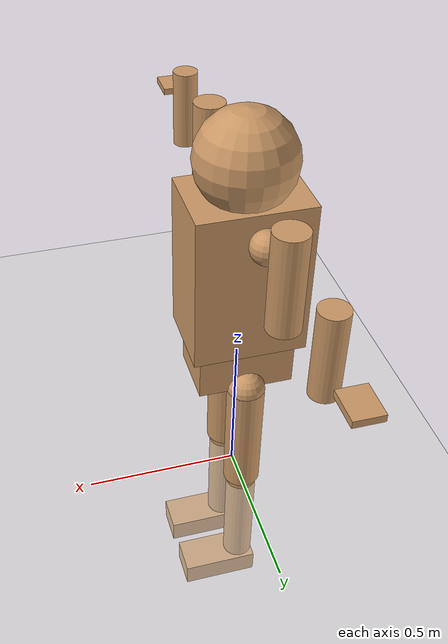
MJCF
<?xml version='1.0' encoding='utf-8'?>
<mujoco model="humanoid_robot">
  <compiler angle="radian" meshdir="D:\ROS2_PROJECT\robotstudio\examples\humanoid_robot\meshes" autolimits="true" />
  <option timestep="0.001" gravity="0 0 -9.81" />
  <default>
    <geom rgba="0.8 0.6 0.4 1" friction="1 0.5 0.5" />
  </default>
  <asset>
    <material name="pelvis_color" rgba="0.7 0.7 0.7 1.0" />
    <material name="body_color" rgba="0.8 0.8 0.8 1.0" />
    <material name="head_color" rgba="0.9 0.8 0.7 1.0" />
    <material name="sensor_color" rgba="0.8 0.2 0.2 1.0" />
    <material name="joint_color" rgba="0.3 0.3 0.3 1.0" />
    <material name="arm_color" rgba="0.7 0.7 0.7 1.0" />
    <material name="hand_color" rgba="0.9 0.8 0.7 1.0" />
    <material name="leg_color" rgba="0.2 0.2 0.8 1.0" />
    <material name="foot_color" rgba="0.3 0.3 0.3 1.0" />
  </asset>
  <worldbody>
    <light diffuse="0.5 0.5 0.5" pos="0 0 3" dir="0 0 -1" />
    <geom name="floor" type="plane" size="0 0 1" rgba="0.9 0.9 0.9 1" />
    <body name="base_link" pos="0 0 0.5">
      <freejoint name="base_link_freejoint" />
      <inertial mass="5.0" pos="0 0 0" fullinertia="0.018 0.023 0.027 0.0 0.0 0.0" />
      <geom name="base_link_visual" type="box" group="0" pos="0 0 0" size="0.15 0.1 0.075" material="pelvis_color" />
      <geom name="base_link_collision" type="box" group="3" rgba="0.5 0.5 0.5 0.3" pos="0 0 0" size="0.15 0.1 0.075" />
      <body name="torso" pos="0 0 0.075">
        <inertial mass="20.0" pos="0 0 0.25" fullinertia="0.533 0.616 0.208 0.0 0.0 0.0" />
        <geom name="torso_visual" type="box" group="0" pos="0 0 0.25" size="0.175 0.125 0.25" material="body_color" />
        <geom name="torso_collision" type="box" group="3" rgba="0.5 0.5 0.5 0.3" pos="0 0 0.25" size="0.175 0.125 0.25" />
        <body name="head" pos="0 0 0.6">
          <joint name="neck_pitch" type="hinge" axis="0 1 0" range="-0.785 0.785" damping="0.5" frictionloss="0.1" />
          <inertial mass="4.0" pos="0 0 0" fullinertia="0.036 0.036 0.036 0.0 0.0 0.0" />
          <geom name="head_visual" type="sphere" group="0" pos="0 0 0" size="0.15" material="head_color" />
          <geom name="head_collision" type="sphere" group="3" rgba="0.5 0.5 0.5 0.3" pos="0 0 0" size="0.15" />
        </body>
        <body name="imu_link" pos="0 0 0.25">
          <inertial mass="0.01" pos="0 0 0" fullinertia="0.00001 0.00001 0.00001 0.0 0.0 0.0" />
          <geom name="imu_link_visual" type="box" group="0" pos="0 0 0" size="0.01 0.01 0.005" material="sensor_color" />
        </body>
        <body name="left_shoulder" pos="0 0.2 0.45">
          <joint name="left_shoulder_pitch" type="hinge" axis="0 1 0" range="-3.14 3.14" damping="0.5" frictionloss="0.1" />
          <inertial mass="0.5" pos="0 0 0" fullinertia="0.001 0.001 0.001 0.0 0.0 0.0" />
          <geom name="left_shoulder_visual" type="sphere" group="0" pos="0 0 0" size="0.05" material="joint_color" />
          <body name="left_upper_arm" pos="0 0 0">
            <joint name="left_shoulder_roll" type="hinge" axis="1 0 0" range="-1.57 1.57" damping="0.5" frictionloss="0.1" />
            <inertial mass="2.0" pos="0 0.15 0" fullinertia="0.016 0.001 0.016 0.0 0.0 0.0" />
            <geom name="left_upper_arm_visual" type="cylinder" group="0" pos="0 0.15 0" size="0.05 0.15" material="arm_color" />
            <geom name="left_upper_arm_collision" type="cylinder" group="3" rgba="0.5 0.5 0.5 0.3" pos="0 0.15 0" size="0.05 0.15" />
            <body name="left_lower_arm" pos="0 0.3 0">
              <joint name="left_elbow" type="hinge" axis="0 1 0" range="0 2.618" damping="0.5" frictionloss="0.1" />
              <inertial mass="1.5" pos="0 0.125 0" fullinertia="0.008 0.001 0.008 0.0 0.0 0.0" />
              <geom name="left_lower_arm_visual" type="cylinder" group="0" pos="0 0.125 0" size="0.04 0.125" material="arm_color" />
              <geom name="left_lower_arm_collision" type="cylinder" group="3" rgba="0.5 0.5 0.5 0.3" pos="0 0.125 0" size="0.04 0.125" />
              <body name="left_hand" pos="0 0.25 0">
                <inertial mass="0.3" pos="0 0.05 0" fullinertia="0.0003 0.0002 0.0002 0.0 0.0 0.0" />
                <geom name="left_hand_visual" type="box" group="0" pos="0 0.05 0" size="0.04 0.05 0.01" material="hand_color" />
                <geom name="left_hand_collision" type="box" group="3" rgba="0.5 0.5 0.5 0.3" pos="0 0.05 0" size="0.04 0.05 0.01" />
              </body>
            </body>
          </body>
        </body>
        <body name="right_shoulder" pos="0 -0.2 0.45">
          <joint name="right_shoulder_pitch" type="hinge" axis="0 1 0" range="-3.14 3.14" damping="0.5" frictionloss="0.1" />
          <inertial mass="0.5" pos="0 0 0" fullinertia="0.001 0.001 0.001 0.0 0.0 0.0" />
          <geom name="right_shoulder_visual" type="sphere" group="0" pos="0 0 0" size="0.05" material="joint_color" />
          <body name="right_upper_arm" pos="0 0 0">
            <joint name="right_shoulder_roll" type="hinge" axis="1 0 0" range="-1.57 1.57" damping="0.5" frictionloss="0.1" />
            <inertial mass="2.0" pos="0 -0.15 0" fullinertia="0.016 0.001 0.016 0.0 0.0 0.0" />
            <geom name="right_upper_arm_visual" type="cylinder" group="0" pos="0 -0.15 0" size="0.05 0.15" material="arm_color" />
            <geom name="right_upper_arm_collision" type="cylinder" group="3" rgba="0.5 0.5 0.5 0.3" pos="0 -0.15 0" size="0.05 0.15" />
            <body name="right_lower_arm" pos="0 -0.3 0">
              <joint name="right_elbow" type="hinge" axis="0 1 0" range="0 2.618" damping="0.5" frictionloss="0.1" />
              <inertial mass="1.5" pos="0 -0.125 0" fullinertia="0.008 0.001 0.008 0.0 0.0 0.0" />
              <geom name="right_lower_arm_visual" type="cylinder" group="0" pos="0 -0.125 0" size="0.04 0.125" material="arm_color" />
              <geom name="right_lower_arm_collision" type="cylinder" group="3" rgba="0.5 0.5 0.5 0.3" pos="0 -0.125 0" size="0.04 0.125" />
              <body name="right_hand" pos="0 -0.25 0">
                <inertial mass="0.3" pos="0 -0.05 0" fullinertia="0.0003 0.0002 0.0002 0.0 0.0 0.0" />
                <geom name="right_hand_visual" type="box" group="0" pos="0 -0.05 0" size="0.04 0.05 0.01" material="hand_color" />
                <geom name="right_hand_collision" type="box" group="3" rgba="0.5 0.5 0.5 0.3" pos="0 -0.05 0" size="0.04 0.05 0.01" />
              </body>
            </body>
          </body>
        </body>
      </body>
      <body name="left_hip" pos="0 0.1 -0.075">
        <joint name="left_hip_pitch" type="hinge" axis="0 1 0" range="-2.094 2.094" damping="1.0" frictionloss="0.5" />
        <inertial mass="1.0" pos="0 0 0" fullinertia="0.001 0.001 0.001 0.0 0.0 0.0" />
        <geom name="left_hip_visual" type="sphere" group="0" pos="0 0 0" size="0.06" material="joint_color" />
        <body name="left_upper_leg" pos="0 0 0">
          <joint name="left_hip_roll" type="hinge" axis="1 0 0" range="-0.785 0.785" damping="1.0" frictionloss="0.5" />
          <inertial mass="4.0" pos="0 0 -0.2" fullinertia="0.054 0.054 0.007 0.0 0.0 0.0" />
          <geom name="left_upper_leg_visual" type="cylinder" group="0" pos="0 0 -0.2" size="0.06 0.2" material="leg_color" />
          <geom name="left_upper_leg_collision" type="cylinder" group="3" rgba="0.5 0.5 0.5 0.3" pos="0 0 -0.2" size="0.06 0.2" />
          <body name="left_lower_leg" pos="0 0 -0.4">
            <joint name="left_knee" type="hinge" axis="0 1 0" range="0 2.618" damping="1.0" frictionloss="0.5" />
            <inertial mass="3.0" pos="0 0 -0.2" fullinertia="0.041 0.041 0.004 0.0 0.0 0.0" />
            <geom name="left_lower_leg_visual" type="cylinder" group="0" pos="0 0 -0.2" size="0.05 0.2" material="leg_color" />
            <geom name="left_lower_leg_collision" type="cylinder" group="3" rgba="0.5 0.5 0.5 0.3" pos="0 0 -0.2" size="0.05 0.2" />
            <body name="left_foot" pos="0 0 -0.4">
              <inertial mass="1.0" pos="0.08 0 -0.04" fullinertia="0.002 0.006 0.007 0.0 0.0 0.0" />
              <geom name="left_foot_visual" type="box" group="0" pos="0.08 0 -0.04" size="0.125 0.06 0.04" material="foot_color" />
              <geom name="left_foot_collision" type="box" group="3" rgba="0.5 0.5 0.5 0.3" pos="0.08 0 -0.04" size="0.125 0.06 0.04" />
            </body>
          </body>
        </body>
      </body>
      <body name="right_hip" pos="0 -0.1 -0.075">
        <joint name="right_hip_pitch" type="hinge" axis="0 1 0" range="-2.094 2.094" damping="1.0" frictionloss="0.5" />
        <inertial mass="1.0" pos="0 0 0" fullinertia="0.001 0.001 0.001 0.0 0.0 0.0" />
        <geom name="right_hip_visual" type="sphere" group="0" pos="0 0 0" size="0.06" material="joint_color" />
        <body name="right_upper_leg" pos="0 0 0">
          <joint name="right_hip_roll" type="hinge" axis="1 0 0" range="-0.785 0.785" damping="1.0" frictionloss="0.5" />
          <inertial mass="4.0" pos="0 0 -0.2" fullinertia="0.054 0.054 0.007 0.0 0.0 0.0" />
          <geom name="right_upper_leg_visual" type="cylinder" group="0" pos="0 0 -0.2" size="0.06 0.2" material="leg_color" />
          <geom name="right_upper_leg_collision" type="cylinder" group="3" rgba="0.5 0.5 0.5 0.3" pos="0 0 -0.2" size="0.06 0.2" />
          <body name="right_lower_leg" pos="0 0 -0.4">
            <joint name="right_knee" type="hinge" axis="0 1 0" range="0 2.618" damping="1.0" frictionloss="0.5" />
            <inertial mass="3.0" pos="0 0 -0.2" fullinertia="0.041 0.041 0.004 0.0 0.0 0.0" />
            <geom name="right_lower_leg_visual" type="cylinder" group="0" pos="0 0 -0.2" size="0.05 0.2" material="leg_color" />
            <geom name="right_lower_leg_collision" type="cylinder" group="3" rgba="0.5 0.5 0.5 0.3" pos="0 0 -0.2" size="0.05 0.2" />
            <body name="right_foot" pos="0 0 -0.4">
              <inertial mass="1.0" pos="0.08 0 -0.04" fullinertia="0.002 0.006 0.007 0.0 0.0 0.0" />
              <geom name="right_foot_visual" type="box" group="0" pos="0.08 0 -0.04" size="0.125 0.06 0.04" material="foot_color" />
              <geom name="right_foot_collision" type="box" group="3" rgba="0.5 0.5 0.5 0.3" pos="0.08 0 -0.04" size="0.125 0.06 0.04" />
            </body>
          </body>
        </body>
      </body>
    </body>
  </worldbody>
  <actuator>
    <position name="neck_pitch_motor" joint="neck_pitch" kp="10" ctrlrange="-20.0 20.0" />
    <position name="left_shoulder_pitch_motor" joint="left_shoulder_pitch" kp="10" ctrlrange="-30.0 30.0" />
    <position name="left_shoulder_roll_motor" joint="left_shoulder_roll" kp="10" ctrlrange="-30.0 30.0" />
    <position name="left_elbow_motor" joint="left_elbow" kp="10" ctrlrange="-20.0 20.0" />
    <position name="right_shoulder_pitch_motor" joint="right_shoulder_pitch" kp="10" ctrlrange="-30.0 30.0" />
    <position name="right_shoulder_roll_motor" joint="right_shoulder_roll" kp="10" ctrlrange="-30.0 30.0" />
    <position name="right_elbow_motor" joint="right_elbow" kp="10" ctrlrange="-20.0 20.0" />
    <position name="left_hip_pitch_motor" joint="left_hip_pitch" kp="10" ctrlrange="-100.0 100.0" />
    <position name="left_hip_roll_motor" joint="left_hip_roll" kp="10" ctrlrange="-100.0 100.0" />
    <position name="left_knee_motor" joint="left_knee" kp="10" ctrlrange="-100.0 100.0" />
    <position name="right_hip_pitch_motor" joint="right_hip_pitch" kp="10" ctrlrange="-100.0 100.0" />
    <position name="right_hip_roll_motor" joint="right_hip_roll" kp="10" ctrlrange="-100.0 100.0" />
    <position name="right_knee_motor" joint="right_knee" kp="10" ctrlrange="-100.0 100.0" />
  </actuator>
  <sensor>
    <jointpos name="neck_pitch_pos" joint="neck_pitch" />
    <jointvel name="neck_pitch_vel" joint="neck_pitch" />
    <jointpos name="left_shoulder_pitch_pos" joint="left_shoulder_pitch" />
    <jointvel name="left_shoulder_pitch_vel" joint="left_shoulder_pitch" />
    <jointpos name="left_shoulder_roll_pos" joint="left_shoulder_roll" />
    <jointvel name="left_shoulder_roll_vel" joint="left_shoulder_roll" />
    <jointpos name="left_elbow_pos" joint="left_elbow" />
    <jointvel name="left_elbow_vel" joint="left_elbow" />
    <jointpos name="right_shoulder_pitch_pos" joint="right_shoulder_pitch" />
    <jointvel name="right_shoulder_pitch_vel" joint="right_shoulder_pitch" />
    <jointpos name="right_shoulder_roll_pos" joint="right_shoulder_roll" />
    <jointvel name="right_shoulder_roll_vel" joint="right_shoulder_roll" />
    <jointpos name="right_elbow_pos" joint="right_elbow" />
    <jointvel name="right_elbow_vel" joint="right_elbow" />
    <jointpos name="left_hip_pitch_pos" joint="left_hip_pitch" />
    <jointvel name="left_hip_pitch_vel" joint="left_hip_pitch" />
    <jointpos name="left_hip_roll_pos" joint="left_hip_roll" />
    <jointvel name="left_hip_roll_vel" joint="left_hip_roll" />
    <jointpos name="left_knee_pos" joint="left_knee" />
    <jointvel name="left_knee_vel" joint="left_knee" />
    <jointpos name="right_hip_pitch_pos" joint="right_hip_pitch" />
    <jointvel name="right_hip_pitch_vel" joint="right_hip_pitch" />
    <jointpos name="right_hip_roll_pos" joint="right_hip_roll" />
    <jointvel name="right_hip_roll_vel" joint="right_hip_roll" />
    <jointpos name="right_knee_pos" joint="right_knee" />
    <jointvel name="right_knee_vel" joint="right_knee" />
  </sensor>
</mujoco>
